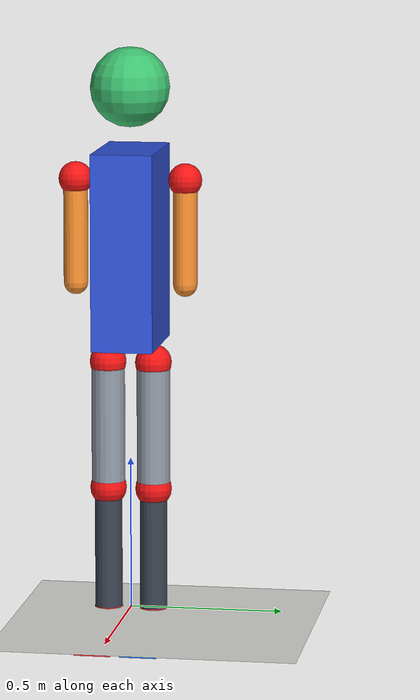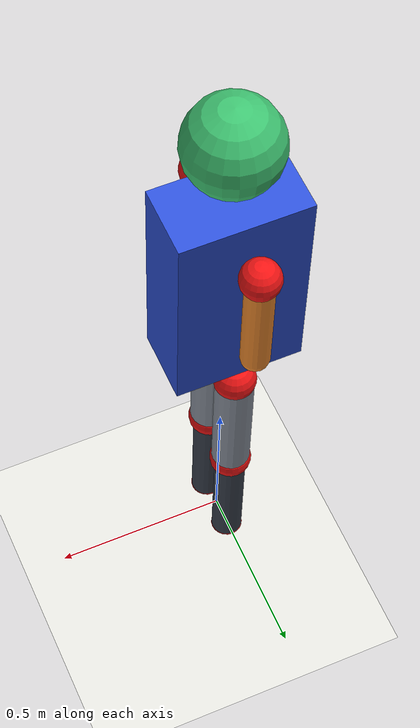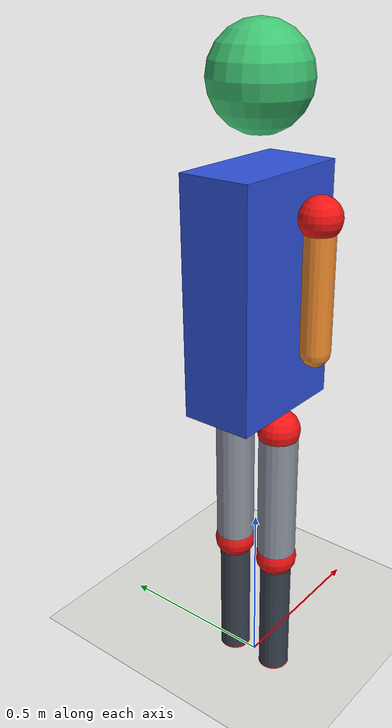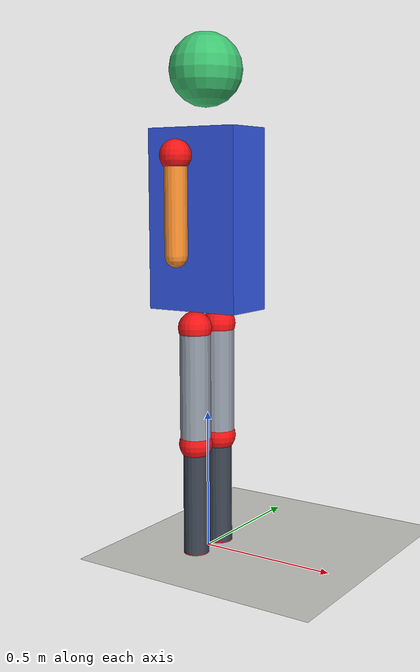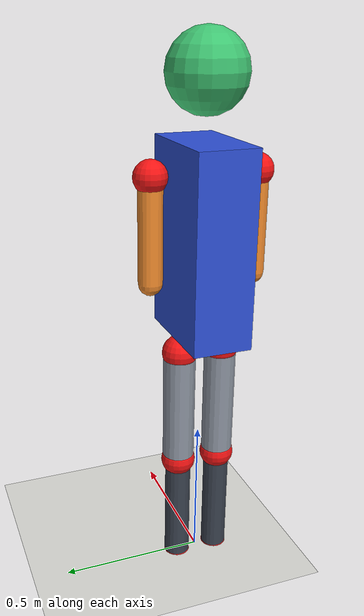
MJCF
<mujoco model="mini_humanoid_motor">
  <compiler angle="radian"/>
  <option timestep="0.01" gravity="0 0 -9.81"/>

  <default>
    <joint damping="1.2" armature="0.03" limited="true"/>
    <geom contype="1" conaffinity="1" friction="0.9 0.02 0.001"/>
    <motor ctrllimited="true" ctrlrange="-12 12"/>
  </default>

  <asset>
    <material name="mat_torso" rgba="0.18 0.32 0.85 1"/>
    <material name="mat_head" rgba="0.24 0.76 0.44 1"/>
    <material name="mat_arm" rgba="0.95 0.55 0.18 1"/>
    <material name="mat_thigh" rgba="0.55 0.58 0.63 1"/>
    <material name="mat_shin" rgba="0.22 0.25 0.30 1"/>
    <material name="mat_left_foot" rgba="0.08 0.46 0.95 1"/>
    <material name="mat_right_foot" rgba="0.95 0.18 0.16 1"/>
    <material name="mat_joint" rgba="0.95 0.08 0.08 1"/>
    <material name="mat_floor" rgba="0.88 0.88 0.86 1"/>
  </asset>

  <worldbody>
    <light name="main_light" pos="0 -3 4" dir="0 1 -1" diffuse="0.8 0.8 0.8"/>
    <camera name="overview" pos="2.4 -3.2 1.9" xyaxes="0.8 0.6 0 -0.18 0.24 0.95"/>
    <geom name="floor" type="plane" size="3 3 0.1" material="mat_floor"/>

    <!-- Root body. It is fixed in space for now, so we can focus on joint control. -->
    <body name="torso" pos="0 0 1.2">
      <geom name="torso_geom" type="box" size="0.18 0.10 0.32" mass="8.0" material="mat_torso"/>

      <body name="head" pos="0 0 0.52">
        <geom name="head_geom" type="sphere" size="0.13" mass="1.0" material="mat_head"/>
      </body>

      <body name="left_upper_arm" pos="0 0.18 0.22">
        <joint name="left_shoulder_pitch" type="hinge" axis="0 1 0" range="-1.6 1.6"/>
        <geom name="left_shoulder_marker" type="sphere" size="0.055" mass="0.05" material="mat_joint"/>
        <geom name="left_upper_arm_geom" type="capsule" fromto="0 0 0 0 0 -0.34" size="0.04" mass="0.8" material="mat_arm"/>
      </body>

      <body name="right_upper_arm" pos="0 -0.18 0.22">
        <joint name="right_shoulder_pitch" type="hinge" axis="0 1 0" range="-1.6 1.6"/>
        <geom name="right_shoulder_marker" type="sphere" size="0.055" mass="0.05" material="mat_joint"/>
        <geom name="right_upper_arm_geom" type="capsule" fromto="0 0 0 0 0 -0.34" size="0.04" mass="0.8" material="mat_arm"/>
      </body>

      <body name="left_thigh" pos="0 0.075 -0.38">
        <joint name="left_hip_pitch" type="hinge" axis="0 1 0" range="-1.2 1.2"/>
        <geom name="left_hip_marker" type="sphere" size="0.06" mass="0.05" material="mat_joint"/>
        <geom name="left_thigh_geom" type="capsule" fromto="0 0 0 0 0 -0.42" size="0.055" mass="1.2" material="mat_thigh"/>

        <body name="left_shin" pos="0 0 -0.42">
          <joint name="left_knee_pitch" type="hinge" axis="0 1 0" range="0 1.8"/>
          <geom name="left_knee_marker" type="sphere" size="0.06" mass="0.05" material="mat_joint"/>
          <geom name="left_shin_geom" type="capsule" fromto="0 0 0 0 0 -0.40" size="0.045" mass="0.9" material="mat_shin"/>

          <body name="left_foot" pos="0 0 -0.42">
            <joint name="left_ankle_pitch" type="hinge" axis="0 1 0" range="-0.7 0.7"/>
            <geom name="left_ankle_marker" type="sphere" size="0.05" mass="0.04" material="mat_joint"/>
            <geom name="left_foot_geom" type="box" pos="0.12 0 -0.035" size="0.20 0.06 0.035" mass="0.45" material="mat_left_foot"/>
          </body>
        </body>
      </body>

      <body name="right_thigh" pos="0 -0.075 -0.38">
        <joint name="right_hip_pitch" type="hinge" axis="0 1 0" range="-1.2 1.2"/>
        <geom name="right_hip_marker" type="sphere" size="0.06" mass="0.05" material="mat_joint"/>
        <geom name="right_thigh_geom" type="capsule" fromto="0 0 0 0 0 -0.42" size="0.055" mass="1.2" material="mat_thigh"/>

        <body name="right_shin" pos="0 0 -0.42">
          <joint name="right_knee_pitch" type="hinge" axis="0 1 0" range="0 1.8"/>
          <geom name="right_knee_marker" type="sphere" size="0.06" mass="0.05" material="mat_joint"/>
          <geom name="right_shin_geom" type="capsule" fromto="0 0 0 0 0 -0.40" size="0.045" mass="0.9" material="mat_shin"/>

          <body name="right_foot" pos="0 0 -0.42">
            <joint name="right_ankle_pitch" type="hinge" axis="0 1 0" range="-0.7 0.7"/>
            <geom name="right_ankle_marker" type="sphere" size="0.05" mass="0.04" material="mat_joint"/>
            <geom name="right_foot_geom" type="box" pos="0.12 0 -0.035" size="0.20 0.06 0.035" mass="0.45" material="mat_right_foot"/>
          </body>
        </body>
      </body>
    </body>
  </worldbody>

  <actuator>
    <motor name="left_shoulder_pitch_motor" joint="left_shoulder_pitch"/>
    <motor name="right_shoulder_pitch_motor" joint="right_shoulder_pitch"/>
    <motor name="left_hip_pitch_motor" joint="left_hip_pitch"/>
    <motor name="left_knee_pitch_motor" joint="left_knee_pitch"/>
    <motor name="left_ankle_pitch_motor" joint="left_ankle_pitch"/>
    <motor name="right_hip_pitch_motor" joint="right_hip_pitch"/>
    <motor name="right_knee_pitch_motor" joint="right_knee_pitch"/>
    <motor name="right_ankle_pitch_motor" joint="right_ankle_pitch"/>
  </actuator>
</mujoco>
